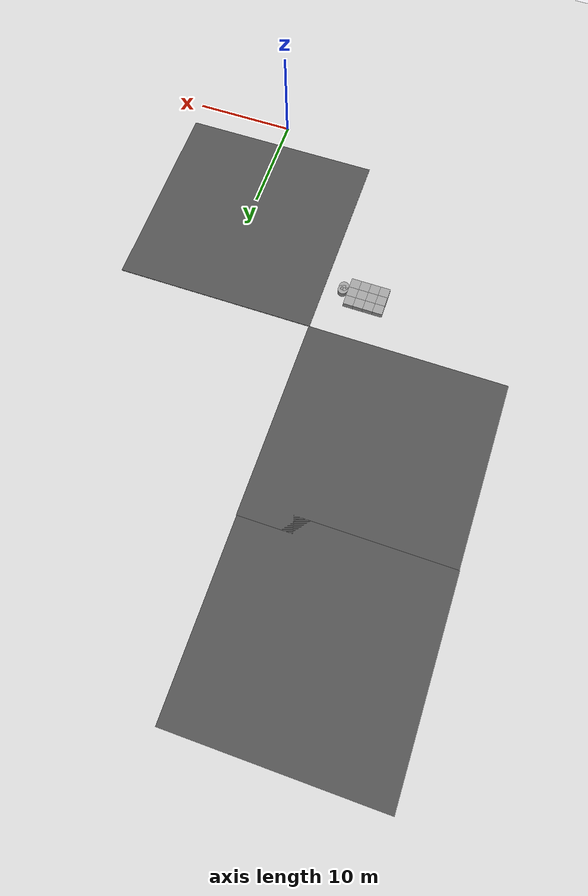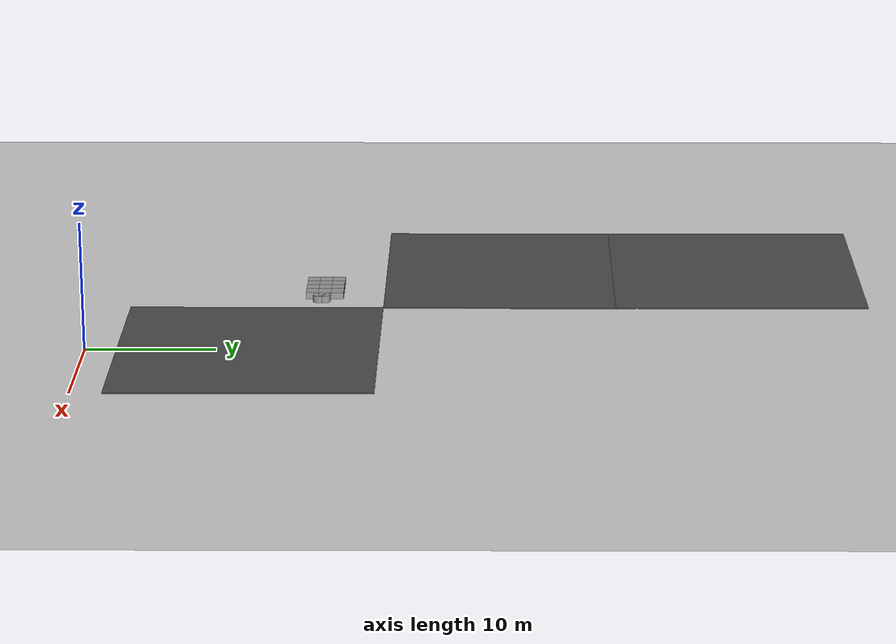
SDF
<sdf version="1.6">
 <world name="default">
  <model name="ground_plane">
   <static>1</static>
   <link name="link">
    <collision name="collision">
     <geometry><plane><normal>0 0 1</normal><size>100 100</size></plane></geometry>
     <surface><friction><ode><mu>100</mu><mu2>50</mu2></ode></friction></surface>
    </collision>
    <visual name="visual">
     <cast_shadows>0</cast_shadows>
     <geometry><plane><normal>0 0 1</normal><size>100 100</size></plane></geometry>
     <material>
      <script><uri>file://media/materials/scripts/gazebo.material</uri><name>Gazebo/Grey</name></script>
     </material>
    </visual>
   </link>
  </model>
  <model name="asphalt_plane">
   <static>1</static>
   <link name="link">
    <collision name="collision"><geometry><box><size>20 20 0.1</size></box></geometry></collision>
    <visual name="visual">
     <cast_shadows>0</cast_shadows>
     <geometry><box><size>20 20 0.1</size></box></geometry>
     <material>
      <script>
       <uri>model://asphalt_plane/materials/scripts</uri>
       <uri>model://asphalt_plane/materials/textures</uri>
       <name>vrc/asphalt</name>
      </script>
     </material>
    </visual>
   </link>
   <pose>-0.132526 12.4193 0 0 -0 0</pose>
  </model>
  <model name="asphalt_plane_2">
   <static>1</static>
   <link name="link">
    <collision name="collision"><geometry><box><size>20 20 0.1</size></box></geometry></collision>
    <visual name="visual">
     <cast_shadows>0</cast_shadows>
     <geometry><box><size>20 20 0.1</size></box></geometry>
     <material>
      <script>
       <uri>model://asphalt_plane/materials/scripts</uri>
       <uri>model://asphalt_plane/materials/textures</uri>
       <name>vrc/asphalt</name>
      </script>
     </material>
    </visual>
   </link>
   <pose>-20.0756 32.4215 0 0 -0 0</pose>
  </model>
  <model name="asphalt_plane_5">
   <static>1</static>
   <link name="link">
    <collision name="collision"><geometry><box><size>20 20 0.1</size></box></geometry></collision>
    <visual name="visual">
     <cast_shadows>0</cast_shadows>
     <geometry><box><size>20 20 0.1</size></box></geometry>
     <material>
      <script>
       <uri>model://asphalt_plane/materials/scripts</uri>
       <uri>model://asphalt_plane/materials/textures</uri>
       <name>vrc/asphalt</name>
      </script>
     </material>
    </visual>
   </link>
   <pose>-20.1223 50.8095 0 0 -0 0</pose>
  </model>
  <model name="car_4">
   <link name="link_0">
    <pose>-0.5 -0.883748 0 0 -0 0</pose>
    <inertial>
     <mass>1</mass>
     <inertia>
      <ixx>0.166667</ixx>
      <ixy>0</ixy>
      <ixz>0</ixz>
      <iyy>0.166667</iyy>
      <iyz>0</iyz>
      <izz>0.166667</izz>
     </inertia>
    </inertial>
    <visual name="visual">
     <geometry><box><size>1 1 1</size></box></geometry>
     <material>
      <lighting>1</lighting>
      <script><uri>file://media/materials/scripts/gazebo.material</uri><name>Gazebo/Grey</name></script>
      <ambient>0.3 0.3 0.3 1</ambient>
      <diffuse>0.7 0.7 0.7 1</diffuse>
      <specular>0.01 0.01 0.01 1</specular>
      <emissive>0 0 0 1</emissive>
     </material>
    </visual>
    <collision name="collision">
     <geometry><box><size>1 1 1</size></box></geometry>
     <surface>
      <friction>
       <ode><mu>1</mu><mu2>1</mu2><fdir1>0 0 0</fdir1><slip1>0</slip1><slip2>0</slip2></ode>
       <torsional>
        <coefficient>1</coefficient>
        <patch_radius>0</patch_radius>
        <surface_radius>0</surface_radius>
        <use_patch_radius>1</use_patch_radius>
        <ode><slip>0</slip></ode>
       </torsional>
      </friction>
      <bounce><restitution_coefficient>0</restitution_coefficient><threshold>1e+06</threshold></bounce>
      <contact>
       <collide_without_contact>0</collide_without_contact>
       <collide_without_contact_bitmask>1</collide_without_contact_bitmask>
       <collide_bitmask>1</collide_bitmask>
       <ode>
        <soft_cfm>0</soft_cfm>
        <soft_erp>0.2</soft_erp>
        <kp>1e+13</kp>
        <kd>1</kd>
        <max_vel>0.01</max_vel>
        <min_depth>0</min_depth>
       </ode>
       <bullet>
        <split_impulse>1</split_impulse>
        <split_impulse_penetration_threshold>-0.01</split_impulse_penetration_threshold>
        <soft_cfm>0</soft_cfm>
        <soft_erp>0.2</soft_erp>
        <kp>1e+13</kp>
        <kd>1</kd>
       </bullet>
      </contact>
     </surface>
    </collision>
   </link>
   <link name="link_1">
    <pose>0.5 -0.883748 0 0 -0 0</pose>
    <inertial>
     <mass>1</mass>
     <inertia>
      <ixx>0.166667</ixx>
      <ixy>0</ixy>
      <ixz>0</ixz>
      <iyy>0.166667</iyy>
      <iyz>0</iyz>
      <izz>0.166667</izz>
     </inertia>
    </inertial>
    <visual name="visual">
     <geometry><box><size>1 1 1</size></box></geometry>
     <material>
      <lighting>1</lighting>
      <script><uri>file://media/materials/scripts/gazebo.material</uri><name>Gazebo/Grey</name></script>
      <ambient>0.3 0.3 0.3 1</ambient>
      <diffuse>0.7 0.7 0.7 1</diffuse>
      <specular>0.01 0.01 0.01 1</specular>
      <emissive>0 0 0 1</emissive>
     </material>
    </visual>
    <collision name="collision">
     <geometry><box><size>1 1 1</size></box></geometry>
     <surface>
      <friction>
       <ode><mu>1</mu><mu2>1</mu2><fdir1>0 0 0</fdir1><slip1>0</slip1><slip2>0</slip2></ode>
       <torsional>
        <coefficient>1</coefficient>
        <patch_radius>0</patch_radius>
        <surface_radius>0</surface_radius>
        <use_patch_radius>1</use_patch_radius>
        <ode><slip>0</slip></ode>
       </torsional>
      </friction>
      <bounce><restitution_coefficient>0</restitution_coefficient><threshold>1e+06</threshold></bounce>
      <contact>
       <collide_without_contact>0</collide_without_contact>
       <collide_without_contact_bitmask>1</collide_without_contact_bitmask>
       <collide_bitmask>1</collide_bitmask>
       <ode>
        <soft_cfm>0</soft_cfm>
        <soft_erp>0.2</soft_erp>
        <kp>1e+13</kp>
        <kd>1</kd>
        <max_vel>0.01</max_vel>
        <min_depth>0</min_depth>
       </ode>
       <bullet>
        <split_impulse>1</split_impulse>
        <split_impulse_penetration_threshold>-0.01</split_impulse_penetration_threshold>
        <soft_cfm>0</soft_cfm>
        <soft_erp>0.2</soft_erp>
        <kp>1e+13</kp>
        <kd>1</kd>
       </bullet>
      </contact>
     </surface>
    </collision>
   </link>
   <link name="link_12">
    <pose>-1.5 0.11625 0 0 -0 0</pose>
    <inertial>
     <mass>1</mass>
     <inertia>
      <ixx>0.166667</ixx>
      <ixy>0</ixy>
      <ixz>0</ixz>
      <iyy>0.166667</iyy>
      <iyz>0</iyz>
      <izz>0.166667</izz>
     </inertia>
    </inertial>
    <visual name="visual">
     <geometry><box><size>1 1 1</size></box></geometry>
     <material>
      <lighting>1</lighting>
      <script><uri>file://media/materials/scripts/gazebo.material</uri><name>Gazebo/Grey</name></script>
      <ambient>0.3 0.3 0.3 1</ambient>
      <diffuse>0.7 0.7 0.7 1</diffuse>
      <specular>0.01 0.01 0.01 1</specular>
      <emissive>0 0 0 1</emissive>
     </material>
    </visual>
    <collision name="collision">
     <geometry><box><size>1 1 1</size></box></geometry>
     <surface>
      <friction>
       <ode><mu>1</mu><mu2>1</mu2><fdir1>0 0 0</fdir1><slip1>0</slip1><slip2>0</slip2></ode>
       <torsional>
        <coefficient>1</coefficient>
        <patch_radius>0</patch_radius>
        <surface_radius>0</surface_radius>
        <use_patch_radius>1</use_patch_radius>
        <ode><slip>0</slip></ode>
       </torsional>
      </friction>
      <bounce><restitution_coefficient>0</restitution_coefficient><threshold>1e+06</threshold></bounce>
      <contact>
       <collide_without_contact>0</collide_without_contact>
       <collide_without_contact_bitmask>1</collide_without_contact_bitmask>
       <collide_bitmask>1</collide_bitmask>
       <ode>
        <soft_cfm>0</soft_cfm>
        <soft_erp>0.2</soft_erp>
        <kp>1e+13</kp>
        <kd>1</kd>
        <max_vel>0.01</max_vel>
        <min_depth>0</min_depth>
       </ode>
       <bullet>
        <split_impulse>1</split_impulse>
        <split_impulse_penetration_threshold>-0.01</split_impulse_penetration_threshold>
        <soft_cfm>0</soft_cfm>
        <soft_erp>0.2</soft_erp>
        <kp>1e+13</kp>
        <kd>1</kd>
       </bullet>
      </contact>
     </surface>
    </collision>
   </link>
   <link name="link_13">
    <pose>1.5 1.11625 0 0 -0 0</pose>
    <inertial>
     <mass>1</mass>
     <inertia>
      <ixx>0.166667</ixx>
      <ixy>0</ixy>
      <ixz>0</ixz>
      <iyy>0.166667</iyy>
      <iyz>0</iyz>
      <izz>0.166667</izz>
     </inertia>
    </inertial>
    <visual name="visual">
     <geometry><box><size>1 1 1</size></box></geometry>
     <material>
      <lighting>1</lighting>
      <script><uri>file://media/materials/scripts/gazebo.material</uri><name>Gazebo/Grey</name></script>
      <ambient>0.3 0.3 0.3 1</ambient>
      <diffuse>0.7 0.7 0.7 1</diffuse>
      <specular>0.01 0.01 0.01 1</specular>
      <emissive>0 0 0 1</emissive>
     </material>
    </visual>
    <collision name="collision">
     <geometry><box><size>1 1 1</size></box></geometry>
     <surface>
      <friction>
       <ode><mu>1</mu><mu2>1</mu2><fdir1>0 0 0</fdir1><slip1>0</slip1><slip2>0</slip2></ode>
       <torsional>
        <coefficient>1</coefficient>
        <patch_radius>0</patch_radius>
        <surface_radius>0</surface_radius>
        <use_patch_radius>1</use_patch_radius>
        <ode><slip>0</slip></ode>
       </torsional>
      </friction>
      <bounce><restitution_coefficient>0</restitution_coefficient><threshold>1e+06</threshold></bounce>
      <contact>
       <collide_without_contact>0</collide_without_contact>
       <collide_without_contact_bitmask>1</collide_without_contact_bitmask>
       <collide_bitmask>1</collide_bitmask>
       <ode>
        <soft_cfm>0</soft_cfm>
        <soft_erp>0.2</soft_erp>
        <kp>1e+13</kp>
        <kd>1</kd>
        <max_vel>0.01</max_vel>
        <min_depth>0</min_depth>
       </ode>
       <bullet>
        <split_impulse>1</split_impulse>
        <split_impulse_penetration_threshold>-0.01</split_impulse_penetration_threshold>
        <soft_cfm>0</soft_cfm>
        <soft_erp>0.2</soft_erp>
        <kp>1e+13</kp>
        <kd>1</kd>
       </bullet>
      </contact>
     </surface>
    </collision>
   </link>
   <link name="link_14">
    <pose>0.5 1.11625 0 0 -0 0</pose>
    <inertial>
     <mass>1</mass>
     <inertia>
      <ixx>0.166667</ixx>
      <ixy>0</ixy>
      <ixz>0</ixz>
      <iyy>0.166667</iyy>
      <iyz>0</iyz>
      <izz>0.166667</izz>
     </inertia>
    </inertial>
    <visual name="visual">
     <geometry><box><size>1 1 1</size></box></geometry>
     <material>
      <lighting>1</lighting>
      <script><uri>file://media/materials/scripts/gazebo.material</uri><name>Gazebo/Grey</name></script>
      <ambient>0.3 0.3 0.3 1</ambient>
      <diffuse>0.7 0.7 0.7 1</diffuse>
      <specular>0.01 0.01 0.01 1</specular>
      <emissive>0 0 0 1</emissive>
     </material>
    </visual>
    <collision name="collision">
     <geometry><box><size>1 1 1</size></box></geometry>
     <surface>
      <friction>
       <ode><mu>1</mu><mu2>1</mu2><fdir1>0 0 0</fdir1><slip1>0</slip1><slip2>0</slip2></ode>
       <torsional>
        <coefficient>1</coefficient>
        <patch_radius>0</patch_radius>
        <surface_radius>0</surface_radius>
        <use_patch_radius>1</use_patch_radius>
        <ode><slip>0</slip></ode>
       </torsional>
      </friction>
      <bounce><restitution_coefficient>0</restitution_coefficient><threshold>1e+06</threshold></bounce>
      <contact>
       <collide_without_contact>0</collide_without_contact>
       <collide_without_contact_bitmask>1</collide_without_contact_bitmask>
       <collide_bitmask>1</collide_bitmask>
       <ode>
        <soft_cfm>0</soft_cfm>
        <soft_erp>0.2</soft_erp>
        <kp>1e+13</kp>
        <kd>1</kd>
        <max_vel>0.01</max_vel>
        <min_depth>0</min_depth>
       </ode>
       <bullet>
        <split_impulse>1</split_impulse>
        <split_impulse_penetration_threshold>-0.01</split_impulse_penetration_threshold>
        <soft_cfm>0</soft_cfm>
        <soft_erp>0.2</soft_erp>
        <kp>1e+13</kp>
        <kd>1</kd>
       </bullet>
      </contact>
     </surface>
    </collision>
   </link>
   <link name="link_15">
    <pose>-0.5 1.11625 0 0 -0 0</pose>
    <inertial>
     <mass>1</mass>
     <inertia>
      <ixx>0.166667</ixx>
      <ixy>0</ixy>
      <ixz>0</ixz>
      <iyy>0.166667</iyy>
      <iyz>0</iyz>
      <izz>0.166667</izz>
     </inertia>
    </inertial>
    <visual name="visual">
     <geometry><box><size>1 1 1</size></box></geometry>
     <material>
      <lighting>1</lighting>
      <script><uri>file://media/materials/scripts/gazebo.material</uri><name>Gazebo/Grey</name></script>
      <ambient>0.3 0.3 0.3 1</ambient>
      <diffuse>0.7 0.7 0.7 1</diffuse>
      <specular>0.01 0.01 0.01 1</specular>
      <emissive>0 0 0 1</emissive>
     </material>
    </visual>
    <collision name="collision">
     <geometry><box><size>1 1 1</size></box></geometry>
     <surface>
      <friction>
       <ode><mu>1</mu><mu2>1</mu2><fdir1>0 0 0</fdir1><slip1>0</slip1><slip2>0</slip2></ode>
       <torsional>
        <coefficient>1</coefficient>
        <patch_radius>0</patch_radius>
        <surface_radius>0</surface_radius>
        <use_patch_radius>1</use_patch_radius>
        <ode><slip>0</slip></ode>
       </torsional>
      </friction>
      <bounce><restitution_coefficient>0</restitution_coefficient><threshold>1e+06</threshold></bounce>
      <contact>
       <collide_without_contact>0</collide_without_contact>
       <collide_without_contact_bitmask>1</collide_without_contact_bitmask>
       <collide_bitmask>1</collide_bitmask>
       <ode>
        <soft_cfm>0</soft_cfm>
        <soft_erp>0.2</soft_erp>
        <kp>1e+13</kp>
        <kd>1</kd>
        <max_vel>0.01</max_vel>
        <min_depth>0</min_depth>
       </ode>
       <bullet>
        <split_impulse>1</split_impulse>
        <split_impulse_penetration_threshold>-0.01</split_impulse_penetration_threshold>
        <soft_cfm>0</soft_cfm>
        <soft_erp>0.2</soft_erp>
        <kp>1e+13</kp>
        <kd>1</kd>
       </bullet>
      </contact>
     </surface>
    </collision>
   </link>
   <link name="link_16">
    <pose>-1.5 1.11625 0 0 -0 0</pose>
    <inertial>
     <mass>1</mass>
     <inertia>
      <ixx>0.166667</ixx>
      <ixy>0</ixy>
      <ixz>0</ixz>
      <iyy>0.166667</iyy>
      <iyz>0</iyz>
      <izz>0.166667</izz>
     </inertia>
    </inertial>
    <visual name="visual">
     <geometry><box><size>1 1 1</size></box></geometry>
     <material>
      <lighting>1</lighting>
      <script><uri>file://media/materials/scripts/gazebo.material</uri><name>Gazebo/Grey</name></script>
      <ambient>0.3 0.3 0.3 1</ambient>
      <diffuse>0.7 0.7 0.7 1</diffuse>
      <specular>0.01 0.01 0.01 1</specular>
      <emissive>0 0 0 1</emissive>
     </material>
    </visual>
    <collision name="collision">
     <geometry><box><size>1 1 1</size></box></geometry>
     <surface>
      <friction>
       <ode><mu>1</mu><mu2>1</mu2><fdir1>0 0 0</fdir1><slip1>0</slip1><slip2>0</slip2></ode>
       <torsional>
        <coefficient>1</coefficient>
        <patch_radius>0</patch_radius>
        <surface_radius>0</surface_radius>
        <use_patch_radius>1</use_patch_radius>
        <ode><slip>0</slip></ode>
       </torsional>
      </friction>
      <bounce><restitution_coefficient>0</restitution_coefficient><threshold>1e+06</threshold></bounce>
      <contact>
       <collide_without_contact>0</collide_without_contact>
       <collide_without_contact_bitmask>1</collide_without_contact_bitmask>
       <collide_bitmask>1</collide_bitmask>
       <ode>
        <soft_cfm>0</soft_cfm>
        <soft_erp>0.2</soft_erp>
        <kp>1e+13</kp>
        <kd>1</kd>
        <max_vel>0.01</max_vel>
        <min_depth>0</min_depth>
       </ode>
       <bullet>
        <split_impulse>1</split_impulse>
        <split_impulse_penetration_threshold>-0.01</split_impulse_penetration_threshold>
        <soft_cfm>0</soft_cfm>
        <soft_erp>0.2</soft_erp>
        <kp>1e+13</kp>
        <kd>1</kd>
       </bullet>
      </contact>
     </surface>
    </collision>
   </link>
   <link name="link_19">
    <pose>2.5 -0.287812 0 0 -0 0</pose>
    <inertial>
     <mass>1</mass>
     <inertia><ixx>0.145833</ixx><ixy>0</ixy><ixz>0</ixz><iyy>0.145833</iyy><iyz>0</iyz><izz>0.125</izz></inertia>
    </inertial>
    <visual name="visual">
     <geometry><cylinder><radius>0.5</radius><length>1</length></cylinder></geometry>
     <material>
      <lighting>1</lighting>
      <script><uri>file://media/materials/scripts/gazebo.material</uri><name>Gazebo/Grey</name></script>
      <ambient>0.3 0.3 0.3 1</ambient>
      <diffuse>0.7 0.7 0.7 1</diffuse>
      <specular>0.01 0.01 0.01 1</specular>
      <emissive>0 0 0 1</emissive>
     </material>
    </visual>
    <collision name="collision">
     <geometry><cylinder><radius>0.5</radius><length>1</length></cylinder></geometry>
     <surface>
      <friction>
       <ode><mu>1</mu><mu2>1</mu2><fdir1>0 0 0</fdir1><slip1>0</slip1><slip2>0</slip2></ode>
       <torsional>
        <coefficient>1</coefficient>
        <patch_radius>0</patch_radius>
        <surface_radius>0</surface_radius>
        <use_patch_radius>1</use_patch_radius>
        <ode><slip>0</slip></ode>
       </torsional>
      </friction>
      <bounce><restitution_coefficient>0</restitution_coefficient><threshold>1e+06</threshold></bounce>
      <contact>
       <collide_without_contact>0</collide_without_contact>
       <collide_without_contact_bitmask>1</collide_without_contact_bitmask>
       <collide_bitmask>1</collide_bitmask>
       <ode>
        <soft_cfm>0</soft_cfm>
        <soft_erp>0.2</soft_erp>
        <kp>1e+13</kp>
        <kd>1</kd>
        <max_vel>0.01</max_vel>
        <min_depth>0</min_depth>
       </ode>
       <bullet>
        <split_impulse>1</split_impulse>
        <split_impulse_penetration_threshold>-0.01</split_impulse_penetration_threshold>
        <soft_cfm>0</soft_cfm>
        <soft_erp>0.2</soft_erp>
        <kp>1e+13</kp>
        <kd>1</kd>
       </bullet>
      </contact>
     </surface>
    </collision>
   </link>
   <link name="link_2">
    <pose>1.5 -0.883748 0 0 -0 0</pose>
    <inertial>
     <mass>1</mass>
     <inertia>
      <ixx>0.166667</ixx>
      <ixy>0</ixy>
      <ixz>0</ixz>
      <iyy>0.166667</iyy>
      <iyz>0</iyz>
      <izz>0.166667</izz>
     </inertia>
    </inertial>
    <visual name="visual">
     <geometry><box><size>1 1 1</size></box></geometry>
     <material>
      <lighting>1</lighting>
      <script><uri>file://media/materials/scripts/gazebo.material</uri><name>Gazebo/Grey</name></script>
      <ambient>0.3 0.3 0.3 1</ambient>
      <diffuse>0.7 0.7 0.7 1</diffuse>
      <specular>0.01 0.01 0.01 1</specular>
      <emissive>0 0 0 1</emissive>
     </material>
    </visual>
    <collision name="collision">
     <geometry><box><size>1 1 1</size></box></geometry>
     <surface>
      <friction>
       <ode><mu>1</mu><mu2>1</mu2><fdir1>0 0 0</fdir1><slip1>0</slip1><slip2>0</slip2></ode>
       <torsional>
        <coefficient>1</coefficient>
        <patch_radius>0</patch_radius>
        <surface_radius>0</surface_radius>
        <use_patch_radius>1</use_patch_radius>
        <ode><slip>0</slip></ode>
       </torsional>
      </friction>
      <bounce><restitution_coefficient>0</restitution_coefficient><threshold>1e+06</threshold></bounce>
      <contact>
       <collide_without_contact>0</collide_without_contact>
       <collide_without_contact_bitmask>1</collide_without_contact_bitmask>
       <collide_bitmask>1</collide_bitmask>
       <ode>
        <soft_cfm>0</soft_cfm>
        <soft_erp>0.2</soft_erp>
        <kp>1e+13</kp>
        <kd>1</kd>
        <max_vel>0.01</max_vel>
        <min_depth>0</min_depth>
       </ode>
       <bullet>
        <split_impulse>1</split_impulse>
        <split_impulse_penetration_threshold>-0.01</split_impulse_penetration_threshold>
        <soft_cfm>0</soft_cfm>
        <soft_erp>0.2</soft_erp>
        <kp>1e+13</kp>
        <kd>1</kd>
       </bullet>
      </contact>
     </surface>
    </collision>
   </link>
   <link name="link_20">
    <pose>2.5 0.11625 0 0 -0 0</pose>
    <inertial>
     <mass>1</mass>
     <inertia><ixx>0.145833</ixx><ixy>0</ixy><ixz>0</ixz><iyy>0.145833</iyy><iyz>0</iyz><izz>0.125</izz></inertia>
    </inertial>
    <visual name="visual">
     <geometry><cylinder><radius>0.5</radius><length>1</length></cylinder></geometry>
     <material>
      <lighting>1</lighting>
      <script><uri>file://media/materials/scripts/gazebo.material</uri><name>Gazebo/Grey</name></script>
      <ambient>0.3 0.3 0.3 1</ambient>
      <diffuse>0.7 0.7 0.7 1</diffuse>
      <specular>0.01 0.01 0.01 1</specular>
      <emissive>0 0 0 1</emissive>
     </material>
    </visual>
    <collision name="collision">
     <geometry><cylinder><radius>0.5</radius><length>1</length></cylinder></geometry>
     <surface>
      <friction>
       <ode><mu>1</mu><mu2>1</mu2><fdir1>0 0 0</fdir1><slip1>0</slip1><slip2>0</slip2></ode>
       <torsional>
        <coefficient>1</coefficient>
        <patch_radius>0</patch_radius>
        <surface_radius>0</surface_radius>
        <use_patch_radius>1</use_patch_radius>
        <ode><slip>0</slip></ode>
       </torsional>
      </friction>
      <bounce><restitution_coefficient>0</restitution_coefficient><threshold>1e+06</threshold></bounce>
      <contact>
       <collide_without_contact>0</collide_without_contact>
       <collide_without_contact_bitmask>1</collide_without_contact_bitmask>
       <collide_bitmask>1</collide_bitmask>
       <ode>
        <soft_cfm>0</soft_cfm>
        <soft_erp>0.2</soft_erp>
        <kp>1e+13</kp>
        <kd>1</kd>
        <max_vel>0.01</max_vel>
        <min_depth>0</min_depth>
       </ode>
       <bullet>
        <split_impulse>1</split_impulse>
        <split_impulse_penetration_threshold>-0.01</split_impulse_penetration_threshold>
        <soft_cfm>0</soft_cfm>
        <soft_erp>0.2</soft_erp>
        <kp>1e+13</kp>
        <kd>1</kd>
       </bullet>
      </contact>
     </surface>
    </collision>
   </link>
   <link name="link_3">
    <pose>1.5 0.116252 0 0 -0 0</pose>
    <inertial>
     <mass>1</mass>
     <inertia>
      <ixx>0.166667</ixx>
      <ixy>0</ixy>
      <ixz>0</ixz>
      <iyy>0.166667</iyy>
      <iyz>0</iyz>
      <izz>0.166667</izz>
     </inertia>
    </inertial>
    <visual name="visual">
     <geometry><box><size>1 1 1</size></box></geometry>
     <material>
      <lighting>1</lighting>
      <script><uri>file://media/materials/scripts/gazebo.material</uri><name>Gazebo/Grey</name></script>
      <ambient>0.3 0.3 0.3 1</ambient>
      <diffuse>0.7 0.7 0.7 1</diffuse>
      <specular>0.01 0.01 0.01 1</specular>
      <emissive>0 0 0 1</emissive>
     </material>
    </visual>
    <collision name="collision">
     <geometry><box><size>1 1 1</size></box></geometry>
     <surface>
      <friction>
       <ode><mu>1</mu><mu2>1</mu2><fdir1>0 0 0</fdir1><slip1>0</slip1><slip2>0</slip2></ode>
       <torsional>
        <coefficient>1</coefficient>
        <patch_radius>0</patch_radius>
        <surface_radius>0</surface_radius>
        <use_patch_radius>1</use_patch_radius>
        <ode><slip>0</slip></ode>
       </torsional>
      </friction>
      <bounce><restitution_coefficient>0</restitution_coefficient><threshold>1e+06</threshold></bounce>
      <contact>
       <collide_without_contact>0</collide_without_contact>
       <collide_without_contact_bitmask>1</collide_without_contact_bitmask>
       <collide_bitmask>1</collide_bitmask>
       <ode>
        <soft_cfm>0</soft_cfm>
        <soft_erp>0.2</soft_erp>
        <kp>1e+13</kp>
        <kd>1</kd>
        <max_vel>0.01</max_vel>
        <min_depth>0</min_depth>
       </ode>
       <bullet>
        <split_impulse>1</split_impulse>
        <split_impulse_penetration_threshold>-0.01</split_impulse_penetration_threshold>
        <soft_cfm>0</soft_cfm>
        <soft_erp>0.2</soft_erp>
        <kp>1e+13</kp>
        <kd>1</kd>
       </bullet>
      </contact>
     </surface>
    </collision>
   </link>
   <link name="link_4">
    <pose>0.5 0.116252 0 0 -0 0</pose>
    <inertial>
     <mass>1</mass>
     <inertia>
      <ixx>0.166667</ixx>
      <ixy>0</ixy>
      <ixz>0</ixz>
      <iyy>0.166667</iyy>
      <iyz>0</iyz>
      <izz>0.166667</izz>
     </inertia>
    </inertial>
    <visual name="visual">
     <geometry><box><size>1 1 1</size></box></geometry>
     <material>
      <lighting>1</lighting>
      <script><uri>file://media/materials/scripts/gazebo.material</uri><name>Gazebo/Grey</name></script>
      <ambient>0.3 0.3 0.3 1</ambient>
      <diffuse>0.7 0.7 0.7 1</diffuse>
      <specular>0.01 0.01 0.01 1</specular>
      <emissive>0 0 0 1</emissive>
     </material>
    </visual>
    <collision name="collision">
     <geometry><box><size>1 1 1</size></box></geometry>
     <surface>
      <friction>
       <ode><mu>1</mu><mu2>1</mu2><fdir1>0 0 0</fdir1><slip1>0</slip1><slip2>0</slip2></ode>
       <torsional>
        <coefficient>1</coefficient>
        <patch_radius>0</patch_radius>
        <surface_radius>0</surface_radius>
        <use_patch_radius>1</use_patch_radius>
        <ode><slip>0</slip></ode>
       </torsional>
      </friction>
      <bounce><restitution_coefficient>0</restitution_coefficient><threshold>1e+06</threshold></bounce>
      <contact>
       <collide_without_contact>0</collide_without_contact>
       <collide_without_contact_bitmask>1</collide_without_contact_bitmask>
       <collide_bitmask>1</collide_bitmask>
       <ode>
        <soft_cfm>0</soft_cfm>
        <soft_erp>0.2</soft_erp>
        <kp>1e+13</kp>
        <kd>1</kd>
        <max_vel>0.01</max_vel>
        <min_depth>0</min_depth>
       </ode>
       <bullet>
        <split_impulse>1</split_impulse>
        <split_impulse_penetration_threshold>-0.01</split_impulse_penetration_threshold>
        <soft_cfm>0</soft_cfm>
        <soft_erp>0.2</soft_erp>
        <kp>1e+13</kp>
        <kd>1</kd>
       </bullet>
      </contact>
     </surface>
    </collision>
   </link>
   <link name="link_5">
    <pose>-0.5 0.116252 0 0 -0 0</pose>
    <inertial>
     <mass>1</mass>
     <inertia>
      <ixx>0.166667</ixx>
      <ixy>0</ixy>
      <ixz>0</ixz>
      <iyy>0.166667</iyy>
      <iyz>0</iyz>
      <izz>0.166667</izz>
     </inertia>
    </inertial>
    <visual name="visual">
     <geometry><box><size>1 1 1</size></box></geometry>
     <material>
      <lighting>1</lighting>
      <script><uri>file://media/materials/scripts/gazebo.material</uri><name>Gazebo/Grey</name></script>
      <ambient>0.3 0.3 0.3 1</ambient>
      <diffuse>0.7 0.7 0.7 1</diffuse>
      <specular>0.01 0.01 0.01 1</specular>
      <emissive>0 0 0 1</emissive>
     </material>
    </visual>
    <collision name="collision">
     <geometry><box><size>1 1 1</size></box></geometry>
     <surface>
      <friction>
       <ode><mu>1</mu><mu2>1</mu2><fdir1>0 0 0</fdir1><slip1>0</slip1><slip2>0</slip2></ode>
       <torsional>
        <coefficient>1</coefficient>
        <patch_radius>0</patch_radius>
        <surface_radius>0</surface_radius>
        <use_patch_radius>1</use_patch_radius>
        <ode><slip>0</slip></ode>
       </torsional>
      </friction>
      <bounce><restitution_coefficient>0</restitution_coefficient><threshold>1e+06</threshold></bounce>
      <contact>
       <collide_without_contact>0</collide_without_contact>
       <collide_without_contact_bitmask>1</collide_without_contact_bitmask>
       <collide_bitmask>1</collide_bitmask>
       <ode>
        <soft_cfm>0</soft_cfm>
        <soft_erp>0.2</soft_erp>
        <kp>1e+13</kp>
        <kd>1</kd>
        <max_vel>0.01</max_vel>
        <min_depth>0</min_depth>
       </ode>
       <bullet>
        <split_impulse>1</split_impulse>
        <split_impulse_penetration_threshold>-0.01</split_impulse_penetration_threshold>
        <soft_cfm>0</soft_cfm>
        <soft_erp>0.2</soft_erp>
        <kp>1e+13</kp>
        <kd>1</kd>
       </bullet>
      </contact>
     </surface>
    </collision>
   </link>
   <link name="link_9">
    <pose>-1.5 -0.883748 0 0 -0 0</pose>
    <inertial>
     <mass>1</mass>
     <inertia>
      <ixx>0.166667</ixx>
      <ixy>0</ixy>
      <ixz>0</ixz>
      <iyy>0.166667</iyy>
      <iyz>0</iyz>
      <izz>0.166667</izz>
     </inertia>
    </inertial>
    <visual name="visual">
     <geometry><box><size>1 1 1</size></box></geometry>
     <material>
      <lighting>1</lighting>
      <script><uri>file://media/materials/scripts/gazebo.material</uri><name>Gazebo/Grey</name></script>
      <ambient>0.3 0.3 0.3 1</ambient>
      <diffuse>0.7 0.7 0.7 1</diffuse>
      <specular>0.01 0.01 0.01 1</specular>
      <emissive>0 0 0 1</emissive>
     </material>
    </visual>
    <collision name="collision">
     <geometry><box><size>1 1 1</size></box></geometry>
     <surface>
      <friction>
       <ode><mu>1</mu><mu2>1</mu2><fdir1>0 0 0</fdir1><slip1>0</slip1><slip2>0</slip2></ode>
       <torsional>
        <coefficient>1</coefficient>
        <patch_radius>0</patch_radius>
        <surface_radius>0</surface_radius>
        <use_patch_radius>1</use_patch_radius>
        <ode><slip>0</slip></ode>
       </torsional>
      </friction>
      <bounce><restitution_coefficient>0</restitution_coefficient><threshold>1e+06</threshold></bounce>
      <contact>
       <collide_without_contact>0</collide_without_contact>
       <collide_without_contact_bitmask>1</collide_without_contact_bitmask>
       <collide_bitmask>1</collide_bitmask>
       <ode>
        <soft_cfm>0</soft_cfm>
        <soft_erp>0.2</soft_erp>
        <kp>1e+13</kp>
        <kd>1</kd>
        <max_vel>0.01</max_vel>
        <min_depth>0</min_depth>
       </ode>
       <bullet>
        <split_impulse>1</split_impulse>
        <split_impulse_penetration_threshold>-0.01</split_impulse_penetration_threshold>
        <soft_cfm>0</soft_cfm>
        <soft_erp>0.2</soft_erp>
        <kp>1e+13</kp>
        <kd>1</kd>
       </bullet>
      </contact>
     </surface>
    </collision>
   </link>
   <static>1</static>
   <pose>-14.5194 17.5388 0 0 -0 0</pose>
  </model>
 </world>
</sdf>
